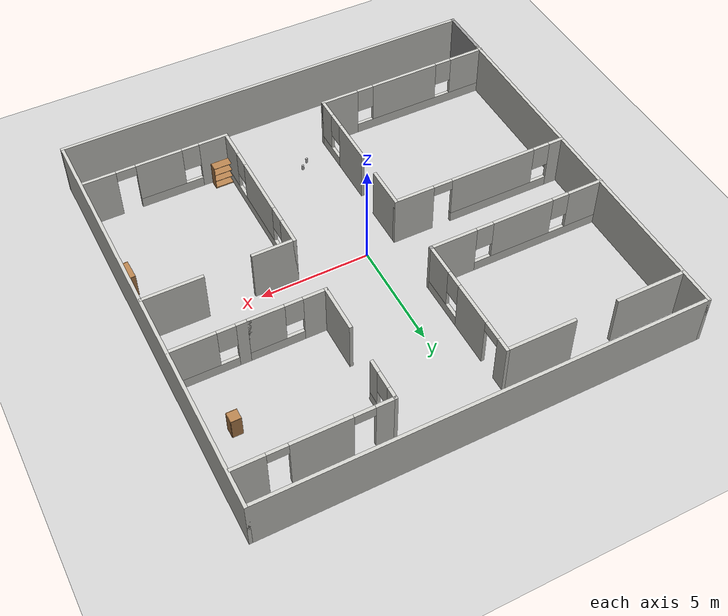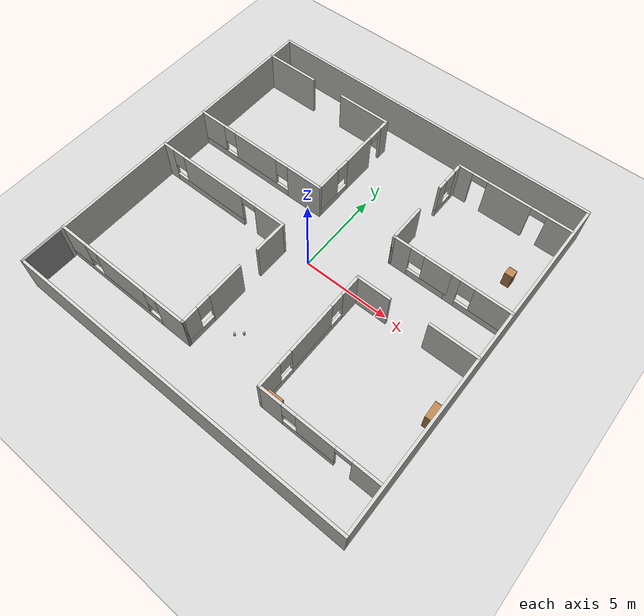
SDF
<sdf version="1.7">
 <world name="default">
  <model name="ground_plane">
   <static>1</static>
   <link name="link">
    <collision name="collision">
     <geometry><plane><normal>0 0 1</normal><size>100 100</size></plane></geometry>
     <surface>
      <contact><collide_bitmask>65535</collide_bitmask></contact>
      <friction><ode><mu>100</mu><mu2>50</mu2></ode></friction>
     </surface>
    </collision>
    <visual name="visual">
     <cast_shadows>0</cast_shadows>
     <geometry><plane><normal>0 0 1</normal><size>100 100</size></plane></geometry>
     <material>
      <script><uri>file://media/materials/scripts/gazebo.material</uri><name>Gazebo/Grey</name></script>
     </material>
    </visual>
   </link>
  </model>
  <model name="supermap">
   <pose>0.084091 0.18801 0 0 -0 0</pose>
   <link name="Wall_13">
    <collision name="Wall_13_Collision">
     <geometry><box><size>3.1968 0.15 2.5</size></box></geometry>
     <pose>0 0 1.25 0 -0 0</pose>
    </collision>
    <visual name="Wall_13_Visual">
     <pose>0 0 1.25 0 -0 0</pose>
     <geometry><box><size>3.1968 0.15 2.5</size></box></geometry>
     <material>
      <script><uri>file://media/materials/scripts/gazebo.material</uri><name>Gazebo/CeilingTiled</name></script>
      <ambient>1 1 1 1</ambient>
     </material>
     <meta><layer>0</layer></meta>
    </visual>
    <pose>-3.13164 8.41571 0 0 -0 0</pose>
   </link>
   <link name="Wall_16">
    <pose>-1.58164 5.49071 0 0 -0 -1.5708</pose>
    <visual name="Wall_16_Visual_0">
     <pose>-2.66773 0 1.25 0 -0 0</pose>
     <geometry><box><size>0.664542 0.15 2.5</size></box></geometry>
     <material>
      <script><uri>file://media/materials/scripts/gazebo.material</uri><name>Gazebo/CeilingTiled</name></script>
      <ambient>1 1 1 1</ambient>
     </material>
     <meta><layer>0</layer></meta>
    </visual>
    <collision name="Wall_16_Collision_0">
     <geometry><box><size>0.664542 0.15 2.5</size></box></geometry>
     <pose>-2.66773 0 1.25 0 -0 0</pose>
    </collision>
    <visual name="Wall_16_Visual_1">
     <pose>-0.400539 0 1.25 0 -0 0</pose>
     <geometry><box><size>2.06984 0.15 2.5</size></box></geometry>
     <material>
      <script><uri>file://media/materials/scripts/gazebo.material</uri><name>Gazebo/CeilingTiled</name></script>
      <ambient>1 1 1 1</ambient>
     </material>
     <meta><layer>0</layer></meta>
    </visual>
    <collision name="Wall_16_Collision_1">
     <geometry><box><size>2.06984 0.15 2.5</size></box></geometry>
     <pose>-0.400539 0 1.25 0 -0 0</pose>
    </collision>
    <visual name="Wall_16_Visual_2">
     <pose>1.81719 0 0.25 0 -0 0</pose>
     <geometry><box><size>2.36562 0.15 0.5</size></box></geometry>
     <material>
      <script><uri>file://media/materials/scripts/gazebo.material</uri><name>Gazebo/CeilingTiled</name></script>
      <ambient>1 1 1 1</ambient>
     </material>
     <meta><layer>0</layer></meta>
    </visual>
    <collision name="Wall_16_Collision_2">
     <geometry><box><size>2.36562 0.15 0.5</size></box></geometry>
     <pose>1.81719 0 0.25 0 -0 0</pose>
    </collision>
    <visual name="Wall_16_Visual_3">
     <pose>2.21719 0 1.5 0 -0 0</pose>
     <geometry><box><size>1.56562 0.15 2</size></box></geometry>
     <material>
      <script><uri>file://media/materials/scripts/gazebo.material</uri><name>Gazebo/CeilingTiled</name></script>
      <ambient>1 1 1 1</ambient>
     </material>
     <meta><layer>0</layer></meta>
    </visual>
    <collision name="Wall_16_Collision_3">
     <geometry><box><size>1.56562 0.15 2</size></box></geometry>
     <pose>2.21719 0 1.5 0 -0 0</pose>
    </collision>
    <visual name="Wall_16_Visual_4">
     <pose>1.03438 0 1.9 0 -0 0</pose>
     <geometry><box><size>0.8 0.15 1.2</size></box></geometry>
     <material>
      <script><uri>file://media/materials/scripts/gazebo.material</uri><name>Gazebo/CeilingTiled</name></script>
      <ambient>1 1 1 1</ambient>
     </material>
     <meta><layer>0</layer></meta>
    </visual>
    <collision name="Wall_16_Collision_4">
     <geometry><box><size>0.8 0.15 1.2</size></box></geometry>
     <pose>1.03438 0 1.9 0 -0 0</pose>
    </collision>
    <visual name="Wall_16_Visual_5">
     <pose>-1.88546 0 2.25 0 -0 0</pose>
     <geometry><box><size>0.9 0.15 0.5</size></box></geometry>
     <material>
      <script><uri>file://media/materials/scripts/gazebo.material</uri><name>Gazebo/CeilingTiled</name></script>
      <ambient>1 1 1 1</ambient>
     </material>
     <meta><layer>0</layer></meta>
    </visual>
    <collision name="Wall_16_Collision_5">
     <geometry><box><size>0.9 0.15 0.5</size></box></geometry>
     <pose>-1.88546 0 2.25 0 -0 0</pose>
    </collision>
   </link>
   <link name="Wall_17">
    <collision name="Wall_17_Collision">
     <geometry><box><size>0.15 0.15 2.5</size></box></geometry>
     <pose>0 0 1.25 0 -0 0</pose>
    </collision>
    <visual name="Wall_17_Visual">
     <pose>0 0 1.25 0 -0 0</pose>
     <geometry><box><size>0.15 0.15 2.5</size></box></geometry>
     <material>
      <script><uri>file://media/materials/scripts/gazebo.material</uri><name>Gazebo/Grey</name></script>
      <ambient>1 1 1 1</ambient>
     </material>
     <meta><layer>0</layer></meta>
    </visual>
    <pose>-1.58164 2.56571 0 0 -0 0</pose>
   </link>
   <link name="Wall_2">
    <collision name="Wall_2_Collision">
     <geometry><box><size>17.75 0.15 2.5</size></box></geometry>
     <pose>0 0 1.25 0 -0 0</pose>
    </collision>
    <visual name="Wall_2_Visual">
     <pose>0 0 1.25 0 -0 0</pose>
     <geometry><box><size>17.75 0.15 2.5</size></box></geometry>
     <material>
      <script><uri>file://media/materials/scripts/gazebo.material</uri><name>Gazebo/CeilingTiled</name></script>
      <ambient>1 1 1 1</ambient>
     </material>
     <meta><layer>0</layer></meta>
    </visual>
    <pose>-9.91033 1.175 0 0 -0 1.5708</pose>
   </link>
   <link name="Wall_21">
    <pose>-5.75664 2.56571 0 0 -0 3.14159</pose>
    <visual name="Wall_21_Visual_0">
     <pose>-3.13363 0 1.25 0 -0 0</pose>
     <geometry><box><size>2.23275 0.15 2.5</size></box></geometry>
     <material>
      <script><uri>file://media/materials/scripts/gazebo.material</uri><name>Gazebo/CeilingTiled</name></script>
      <ambient>1 1 1 1</ambient>
     </material>
     <meta><layer>0</layer></meta>
    </visual>
    <collision name="Wall_21_Collision_0">
     <geometry><box><size>2.23275 0.15 2.5</size></box></geometry>
     <pose>-3.13363 0 1.25 0 -0 0</pose>
    </collision>
    <visual name="Wall_21_Visual_1">
     <pose>1.11637 0 0.25 0 -0 0</pose>
     <geometry><box><size>6.26725 0.15 0.5</size></box></geometry>
     <material>
      <script><uri>file://media/materials/scripts/gazebo.material</uri><name>Gazebo/CeilingTiled</name></script>
      <ambient>1 1 1 1</ambient>
     </material>
     <meta><layer>0</layer></meta>
    </visual>
    <collision name="Wall_21_Collision_1">
     <geometry><box><size>6.26725 0.15 0.5</size></box></geometry>
     <pose>1.11637 0 0.25 0 -0 0</pose>
    </collision>
    <visual name="Wall_21_Visual_2">
     <pose>0.247221 0 1.5 0 -0 0</pose>
     <geometry><box><size>2.92895 0.15 2</size></box></geometry>
     <material>
      <script><uri>file://media/materials/scripts/gazebo.material</uri><name>Gazebo/CeilingTiled</name></script>
      <ambient>1 1 1 1</ambient>
     </material>
     <meta><layer>0</layer></meta>
    </visual>
    <collision name="Wall_21_Collision_2">
     <geometry><box><size>2.92895 0.15 2</size></box></geometry>
     <pose>0.247221 0 1.5 0 -0 0</pose>
    </collision>
    <visual name="Wall_21_Visual_3">
     <pose>3.38085 0 1.5 0 -0 0</pose>
     <geometry><box><size>1.7383 0.15 2</size></box></geometry>
     <material>
      <script><uri>file://media/materials/scripts/gazebo.material</uri><name>Gazebo/CeilingTiled</name></script>
      <ambient>1 1 1 1</ambient>
     </material>
     <meta><layer>0</layer></meta>
    </visual>
    <collision name="Wall_21_Collision_3">
     <geometry><box><size>1.7383 0.15 2</size></box></geometry>
     <pose>3.38085 0 1.5 0 -0 0</pose>
    </collision>
    <visual name="Wall_21_Visual_4">
     <pose>-1.61725 0 1.9 0 -0 0</pose>
     <geometry><box><size>0.8 0.15 1.2</size></box></geometry>
     <material>
      <script><uri>file://media/materials/scripts/gazebo.material</uri><name>Gazebo/CeilingTiled</name></script>
      <ambient>1 1 1 1</ambient>
     </material>
     <meta><layer>0</layer></meta>
    </visual>
    <collision name="Wall_21_Collision_4">
     <geometry><box><size>0.8 0.15 1.2</size></box></geometry>
     <pose>-1.61725 0 1.9 0 -0 0</pose>
    </collision>
    <visual name="Wall_21_Visual_5">
     <pose>2.1117 0 1.9 0 -0 0</pose>
     <geometry><box><size>0.8 0.15 1.2</size></box></geometry>
     <material>
      <script><uri>file://media/materials/scripts/gazebo.material</uri><name>Gazebo/CeilingTiled</name></script>
      <ambient>1 1 1 1</ambient>
     </material>
     <meta><layer>0</layer></meta>
    </visual>
    <collision name="Wall_21_Collision_5">
     <geometry><box><size>0.8 0.15 1.2</size></box></geometry>
     <pose>2.1117 0 1.9 0 -0 0</pose>
    </collision>
   </link>
   <link name="Wall_23">
    <pose>-5.72483 -0.405977 0 0 -0 0</pose>
    <visual name="Wall_23_Visual_0">
     <pose>-3.87306 0 1.25 0 -0 0</pose>
     <geometry><box><size>0.753885 0.15 2.5</size></box></geometry>
     <material>
      <script><uri>file://media/materials/scripts/gazebo.material</uri><name>Gazebo/CeilingTiled</name></script>
      <ambient>1 1 1 1</ambient>
     </material>
     <meta><layer>0</layer></meta>
    </visual>
    <collision name="Wall_23_Collision_0">
     <geometry><box><size>0.753885 0.15 2.5</size></box></geometry>
     <pose>-3.87306 0 1.25 0 -0 0</pose>
    </collision>
    <visual name="Wall_23_Visual_1">
     <pose>3.29505 0 1.25 0 -0 0</pose>
     <geometry><box><size>1.90991 0.15 2.5</size></box></geometry>
     <material>
      <script><uri>file://media/materials/scripts/gazebo.material</uri><name>Gazebo/CeilingTiled</name></script>
      <ambient>1 1 1 1</ambient>
     </material>
     <meta><layer>0</layer></meta>
    </visual>
    <collision name="Wall_23_Collision_1">
     <geometry><box><size>1.90991 0.15 2.5</size></box></geometry>
     <pose>3.29505 0 1.25 0 -0 0</pose>
    </collision>
    <visual name="Wall_23_Visual_2">
     <pose>-1.02801 0 0.25 0 -0 0</pose>
     <geometry><box><size>4.93621 0.15 0.5</size></box></geometry>
     <material>
      <script><uri>file://media/materials/scripts/gazebo.material</uri><name>Gazebo/CeilingTiled</name></script>
      <ambient>1 1 1 1</ambient>
     </material>
     <meta><layer>0</layer></meta>
    </visual>
    <collision name="Wall_23_Collision_2">
     <geometry><box><size>4.93621 0.15 0.5</size></box></geometry>
     <pose>-1.02801 0 0.25 0 -0 0</pose>
    </collision>
    <visual name="Wall_23_Visual_3">
     <pose>-0.628012 0 1.5 0 -0 0</pose>
     <geometry><box><size>4.13621 0.15 2</size></box></geometry>
     <material>
      <script><uri>file://media/materials/scripts/gazebo.material</uri><name>Gazebo/CeilingTiled</name></script>
      <ambient>1 1 1 1</ambient>
     </material>
     <meta><layer>0</layer></meta>
    </visual>
    <collision name="Wall_23_Collision_3">
     <geometry><box><size>4.13621 0.15 2</size></box></geometry>
     <pose>-0.628012 0 1.5 0 -0 0</pose>
    </collision>
    <visual name="Wall_23_Visual_4">
     <pose>-3.09612 0 1.9 0 -0 0</pose>
     <geometry><box><size>0.8 0.15 1.2</size></box></geometry>
     <material>
      <script><uri>file://media/materials/scripts/gazebo.material</uri><name>Gazebo/CeilingTiled</name></script>
      <ambient>1 1 1 1</ambient>
     </material>
     <meta><layer>0</layer></meta>
    </visual>
    <collision name="Wall_23_Collision_4">
     <geometry><box><size>0.8 0.15 1.2</size></box></geometry>
     <pose>-3.09612 0 1.9 0 -0 0</pose>
    </collision>
    <visual name="Wall_23_Visual_5">
     <pose>1.89009 0 2.25 0 -0 0</pose>
     <geometry><box><size>0.9 0.15 0.5</size></box></geometry>
     <material>
      <script><uri>file://media/materials/scripts/gazebo.material</uri><name>Gazebo/CeilingTiled</name></script>
      <ambient>1 1 1 1</ambient>
     </material>
     <meta><layer>0</layer></meta>
    </visual>
    <collision name="Wall_23_Collision_5">
     <geometry><box><size>0.9 0.15 0.5</size></box></geometry>
     <pose>1.89009 0 2.25 0 -0 0</pose>
    </collision>
   </link>
   <link name="Wall_25">
    <collision name="Wall_25_Collision">
     <geometry><box><size>2 0.15 2.5</size></box></geometry>
     <pose>0 0 1.25 0 -0 0</pose>
    </collision>
    <visual name="Wall_25_Visual">
     <pose>0 0 1.25 0 -0 0</pose>
     <geometry><box><size>2 0.15 2.5</size></box></geometry>
     <material>
      <script><uri>file://media/materials/scripts/gazebo.material</uri><name>Gazebo/CeilingTiled</name></script>
      <ambient>1 1 1 1</ambient>
     </material>
     <meta><layer>0</layer></meta>
    </visual>
    <pose>-1.54983 -1.33098 0 0 -0 -1.5708</pose>
   </link>
   <link name="Wall_27">
    <pose>-1.58967 -5.50689 0 0 -0 -1.5708</pose>
    <visual name="Wall_27_Visual_0">
     <pose>-0.912701 0 1.25 0 -0 0</pose>
     <geometry><box><size>2.1746 0.15 2.5</size></box></geometry>
     <material>
      <script><uri>file://media/materials/scripts/gazebo.material</uri><name>Gazebo/CeilingTiled</name></script>
      <ambient>1 1 1 1</ambient>
     </material>
     <meta><layer>0</layer></meta>
    </visual>
    <collision name="Wall_27_Collision_0">
     <geometry><box><size>2.1746 0.15 2.5</size></box></geometry>
     <pose>-0.912701 0 1.25 0 -0 0</pose>
    </collision>
    <visual name="Wall_27_Visual_1">
     <pose>1.0873 0 0.25 0 -0 0</pose>
     <geometry><box><size>1.8254 0.15 0.5</size></box></geometry>
     <material>
      <script><uri>file://media/materials/scripts/gazebo.material</uri><name>Gazebo/CeilingTiled</name></script>
      <ambient>1 1 1 1</ambient>
     </material>
     <meta><layer>0</layer></meta>
    </visual>
    <collision name="Wall_27_Collision_1">
     <geometry><box><size>1.8254 0.15 0.5</size></box></geometry>
     <pose>1.0873 0 0.25 0 -0 0</pose>
    </collision>
    <visual name="Wall_27_Visual_2">
     <pose>1.4873 0 1.5 0 -0 0</pose>
     <geometry><box><size>1.0254 0.15 2</size></box></geometry>
     <material>
      <script><uri>file://media/materials/scripts/gazebo.material</uri><name>Gazebo/CeilingTiled</name></script>
      <ambient>1 1 1 1</ambient>
     </material>
     <meta><layer>0</layer></meta>
    </visual>
    <collision name="Wall_27_Collision_2">
     <geometry><box><size>1.0254 0.15 2</size></box></geometry>
     <pose>1.4873 0 1.5 0 -0 0</pose>
    </collision>
    <visual name="Wall_27_Visual_3">
     <pose>0.574599 0 1.9 0 -0 0</pose>
     <geometry><box><size>0.8 0.15 1.2</size></box></geometry>
     <material>
      <script><uri>file://media/materials/scripts/gazebo.material</uri><name>Gazebo/CeilingTiled</name></script>
      <ambient>1 1 1 1</ambient>
     </material>
     <meta><layer>0</layer></meta>
    </visual>
    <collision name="Wall_27_Collision_3">
     <geometry><box><size>0.8 0.15 1.2</size></box></geometry>
     <pose>0.574599 0 1.9 0 -0 0</pose>
    </collision>
   </link>
   <link name="Wall_28">
    <collision name="Wall_28_Collision">
     <geometry><box><size>0.15 0.15 2.5</size></box></geometry>
     <pose>0 0 1.25 0 -0 0</pose>
    </collision>
    <visual name="Wall_28_Visual">
     <pose>0 0 1.25 0 -0 0</pose>
     <geometry><box><size>0.15 0.15 2.5</size></box></geometry>
     <material>
      <script><uri>file://media/materials/scripts/gazebo.material</uri><name>Gazebo/Grey</name></script>
      <ambient>1 1 1 1</ambient>
     </material>
     <meta><layer>0</layer></meta>
    </visual>
    <pose>-1.58967 -7.43189 0 0 -0 0</pose>
   </link>
   <link name="Wall_31">
    <collision name="Wall_31_Collision">
     <geometry><box><size>2.5 0.15 2.5</size></box></geometry>
     <pose>0 0 1.25 0 -0 0</pose>
    </collision>
    <visual name="Wall_31_Visual">
     <pose>0 0 1.25 0 -0 0</pose>
     <geometry><box><size>2.5 0.15 2.5</size></box></geometry>
     <material>
      <script><uri>file://media/materials/scripts/gazebo.material</uri><name>Gazebo/Grey</name></script>
      <ambient>1 1 1 1</ambient>
     </material>
     <meta><layer>0</layer></meta>
    </visual>
    <pose>-9.91033 -8.8 0 0 -0 -1.5708</pose>
   </link>
   <link name="Wall_38">
    <pose>-5.76467 -7.43189 0 0 -0 3.14159</pose>
    <visual name="Wall_38_Visual_0">
     <pose>-3.34507 0 1.25 0 -0 0</pose>
     <geometry><box><size>1.80986 0.15 2.5</size></box></geometry>
     <material>
      <script><uri>file://media/materials/scripts/gazebo.material</uri><name>Gazebo/CeilingTiled</name></script>
      <ambient>1 1 1 1</ambient>
     </material>
     <meta><layer>0</layer></meta>
    </visual>
    <collision name="Wall_38_Collision_0">
     <geometry><box><size>1.80986 0.15 2.5</size></box></geometry>
     <pose>-3.34507 0 1.25 0 -0 0</pose>
    </collision>
    <visual name="Wall_38_Visual_1">
     <pose>0.904931 0 0.25 0 -0 0</pose>
     <geometry><box><size>6.69014 0.15 0.5</size></box></geometry>
     <material>
      <script><uri>file://media/materials/scripts/gazebo.material</uri><name>Gazebo/CeilingTiled</name></script>
      <ambient>1 1 1 1</ambient>
     </material>
     <meta><layer>0</layer></meta>
    </visual>
    <collision name="Wall_38_Collision_1">
     <geometry><box><size>6.69014 0.15 0.5</size></box></geometry>
     <pose>0.904931 0 0.25 0 -0 0</pose>
    </collision>
    <visual name="Wall_38_Visual_2">
     <pose>0.030177 0 1.5 0 -0 0</pose>
     <geometry><box><size>3.34063 0.15 2</size></box></geometry>
     <material>
      <script><uri>file://media/materials/scripts/gazebo.material</uri><name>Gazebo/CeilingTiled</name></script>
      <ambient>1 1 1 1</ambient>
     </material>
     <meta><layer>0</layer></meta>
    </visual>
    <collision name="Wall_38_Collision_2">
     <geometry><box><size>3.34063 0.15 2</size></box></geometry>
     <pose>0.030177 0 1.5 0 -0 0</pose>
    </collision>
    <visual name="Wall_38_Visual_3">
     <pose>3.37525 0 1.5 0 -0 0</pose>
     <geometry><box><size>1.74951 0.15 2</size></box></geometry>
     <material>
      <script><uri>file://media/materials/scripts/gazebo.material</uri><name>Gazebo/CeilingTiled</name></script>
      <ambient>1 1 1 1</ambient>
     </material>
     <meta><layer>0</layer></meta>
    </visual>
    <collision name="Wall_38_Collision_3">
     <geometry><box><size>1.74951 0.15 2</size></box></geometry>
     <pose>3.37525 0 1.5 0 -0 0</pose>
    </collision>
    <visual name="Wall_38_Visual_4">
     <pose>-2.04014 0 1.9 0 -0 0</pose>
     <geometry><box><size>0.8 0.15 1.2</size></box></geometry>
     <material>
      <script><uri>file://media/materials/scripts/gazebo.material</uri><name>Gazebo/CeilingTiled</name></script>
      <ambient>1 1 1 1</ambient>
     </material>
     <meta><layer>0</layer></meta>
    </visual>
    <collision name="Wall_38_Collision_4">
     <geometry><box><size>0.8 0.15 1.2</size></box></geometry>
     <pose>-2.04014 0 1.9 0 -0 0</pose>
    </collision>
    <visual name="Wall_38_Visual_5">
     <pose>2.10049 0 1.9 0 -0 0</pose>
     <geometry><box><size>0.8 0.15 1.2</size></box></geometry>
     <material>
      <script><uri>file://media/materials/scripts/gazebo.material</uri><name>Gazebo/CeilingTiled</name></script>
      <ambient>1 1 1 1</ambient>
     </material>
     <meta><layer>0</layer></meta>
    </visual>
    <collision name="Wall_38_Collision_5">
     <geometry><box><size>0.8 0.15 1.2</size></box></geometry>
     <pose>2.10049 0 1.9 0 -0 0</pose>
    </collision>
   </link>
   <link name="Wall_40">
    <collision name="Wall_40_Collision">
     <geometry><box><size>20 0.15 2.5</size></box></geometry>
     <pose>0 0 1.25 0 -0 0</pose>
    </collision>
    <visual name="Wall_40_Visual">
     <pose>0 0 1.25 0 -0 0</pose>
     <geometry><box><size>20 0.15 2.5</size></box></geometry>
     <material>
      <script><uri>file://media/materials/scripts/gazebo.material</uri><name>Gazebo/CeilingTiled</name></script>
      <ambient>1 1 1 1</ambient>
     </material>
     <meta><layer>0</layer></meta>
    </visual>
    <pose>0.014666 -9.975 0 0 -0 0</pose>
   </link>
   <link name="Wall_47">
    <pose>3.22807 7.48394 0 0 -0 -1.5708</pose>
    <visual name="Wall_47_Visual_0">
     <pose>-0.700335 0 1.25 0 -0 0</pose>
     <geometry><box><size>0.59933 0.15 2.5</size></box></geometry>
     <material>
      <script><uri>file://media/materials/scripts/gazebo.material</uri><name>Gazebo/CeilingTiled</name></script>
      <ambient>1 1 1 1</ambient>
     </material>
     <meta><layer>0</layer></meta>
    </visual>
    <collision name="Wall_47_Collision_0">
     <geometry><box><size>0.59933 0.15 2.5</size></box></geometry>
     <pose>-0.700335 0 1.25 0 -0 0</pose>
    </collision>
    <visual name="Wall_47_Visual_1">
     <pose>0.299665 0 0.25 0 -0 0</pose>
     <geometry><box><size>1.40067 0.15 0.5</size></box></geometry>
     <material>
      <script><uri>file://media/materials/scripts/gazebo.material</uri><name>Gazebo/CeilingTiled</name></script>
      <ambient>1 1 1 1</ambient>
     </material>
     <meta><layer>0</layer></meta>
    </visual>
    <collision name="Wall_47_Collision_1">
     <geometry><box><size>1.40067 0.15 0.5</size></box></geometry>
     <pose>0.299665 0 0.25 0 -0 0</pose>
    </collision>
    <visual name="Wall_47_Visual_2">
     <pose>0.699665 0 1.5 0 -0 0</pose>
     <geometry><box><size>0.60067 0.15 2</size></box></geometry>
     <material>
      <script><uri>file://media/materials/scripts/gazebo.material</uri><name>Gazebo/CeilingTiled</name></script>
      <ambient>1 1 1 1</ambient>
     </material>
     <meta><layer>0</layer></meta>
    </visual>
    <collision name="Wall_47_Collision_2">
     <geometry><box><size>0.60067 0.15 2</size></box></geometry>
     <pose>0.699665 0 1.5 0 -0 0</pose>
    </collision>
    <visual name="Wall_47_Visual_3">
     <pose>-0.00067 0 1.9 0 -0 0</pose>
     <geometry><box><size>0.8 0.15 1.2</size></box></geometry>
     <material>
      <script><uri>file://media/materials/scripts/gazebo.material</uri><name>Gazebo/CeilingTiled</name></script>
      <ambient>1 1 1 1</ambient>
     </material>
     <meta><layer>0</layer></meta>
    </visual>
    <collision name="Wall_47_Collision_3">
     <geometry><box><size>0.8 0.15 1.2</size></box></geometry>
     <pose>-0.00067 0 1.9 0 -0 0</pose>
    </collision>
   </link>
   <link name="Wall_49">
    <collision name="Wall_49_Collision">
     <geometry><box><size>2.25 0.15 2.5</size></box></geometry>
     <pose>0 0 1.25 0 -0 0</pose>
    </collision>
    <visual name="Wall_49_Visual">
     <pose>0 0 1.25 0 -0 0</pose>
     <geometry><box><size>2.25 0.15 2.5</size></box></geometry>
     <material>
      <script><uri>file://media/materials/scripts/gazebo.material</uri><name>Gazebo/CeilingTiled</name></script>
      <ambient>1 1 1 1</ambient>
     </material>
     <meta><layer>0</layer></meta>
    </visual>
    <pose>3.19748 3.61897 0 0 -0 -1.5708</pose>
   </link>
   <link name="Wall_50">
    <collision name="Wall_50_Collision">
     <geometry><box><size>0.16 0.15 2.5</size></box></geometry>
     <pose>0 0 1.25 0 -0 0</pose>
    </collision>
    <visual name="Wall_50_Visual">
     <pose>0 0 1.25 0 -0 0</pose>
     <geometry><box><size>0.16 0.15 2.5</size></box></geometry>
     <material>
      <script><uri>file://media/materials/scripts/gazebo.material</uri><name>Gazebo/Grey</name></script>
      <ambient>1 1 1 1</ambient>
     </material>
     <meta><layer>0</layer></meta>
    </visual>
    <pose>3.20248 2.56897 0 0 -0 0</pose>
   </link>
   <link name="Wall_54">
    <pose>4.87248 2.56897 0 0 -0 0</pose>
    <visual name="Wall_54_Visual_0">
     <pose>-1.19885 0 1.25 0 -0 0</pose>
     <geometry><box><size>1.1023 0.15 2.5</size></box></geometry>
     <material>
      <script><uri>file://media/materials/scripts/gazebo.material</uri><name>Gazebo/CeilingTiled</name></script>
      <ambient>1 1 1 1</ambient>
     </material>
     <meta><layer>0</layer></meta>
    </visual>
    <collision name="Wall_54_Collision_0">
     <geometry><box><size>1.1023 0.15 2.5</size></box></geometry>
     <pose>-1.19885 0 1.25 0 -0 0</pose>
    </collision>
    <visual name="Wall_54_Visual_1">
     <pose>0.551148 0 0.25 0 -0 0</pose>
     <geometry><box><size>2.39771 0.15 0.5</size></box></geometry>
     <material>
      <script><uri>file://media/materials/scripts/gazebo.material</uri><name>Gazebo/CeilingTiled</name></script>
      <ambient>1 1 1 1</ambient>
     </material>
     <meta><layer>0</layer></meta>
    </visual>
    <collision name="Wall_54_Collision_1">
     <geometry><box><size>2.39771 0.15 0.5</size></box></geometry>
     <pose>0.551148 0 0.25 0 -0 0</pose>
    </collision>
    <visual name="Wall_54_Visual_2">
     <pose>0.951148 0 1.5 0 -0 0</pose>
     <geometry><box><size>1.5977 0.15 2</size></box></geometry>
     <material>
      <script><uri>file://media/materials/scripts/gazebo.material</uri><name>Gazebo/CeilingTiled</name></script>
      <ambient>1 1 1 1</ambient>
     </material>
     <meta><layer>0</layer></meta>
    </visual>
    <collision name="Wall_54_Collision_2">
     <geometry><box><size>1.5977 0.15 2</size></box></geometry>
     <pose>0.951148 0 1.5 0 -0 0</pose>
    </collision>
    <visual name="Wall_54_Visual_3">
     <pose>-0.247705 0 1.9 0 -0 0</pose>
     <geometry><box><size>0.8 0.15 1.2</size></box></geometry>
     <material>
      <script><uri>file://media/materials/scripts/gazebo.material</uri><name>Gazebo/CeilingTiled</name></script>
      <ambient>1 1 1 1</ambient>
     </material>
     <meta><layer>0</layer></meta>
    </visual>
    <collision name="Wall_54_Collision_3">
     <geometry><box><size>0.8 0.15 1.2</size></box></geometry>
     <pose>-0.247705 0 1.9 0 -0 0</pose>
    </collision>
   </link>
   <link name="Wall_56">
    <pose>8.22248 2.56897 0 0 -0 0</pose>
    <visual name="Wall_56_Visual_0">
     <pose>-1.43611 0 1.25 0 -0 0</pose>
     <geometry><box><size>0.627776 0.15 2.5</size></box></geometry>
     <material>
      <script><uri>file://media/materials/scripts/gazebo.material</uri><name>Gazebo/CeilingTiled</name></script>
      <ambient>1 1 1 1</ambient>
     </material>
     <meta><layer>0</layer></meta>
    </visual>
    <collision name="Wall_56_Collision_0">
     <geometry><box><size>0.627776 0.15 2.5</size></box></geometry>
     <pose>-1.43611 0 1.25 0 -0 0</pose>
    </collision>
    <visual name="Wall_56_Visual_1">
     <pose>0.313888 0 0.25 0 -0 0</pose>
     <geometry><box><size>2.87222 0.15 0.5</size></box></geometry>
     <material>
      <script><uri>file://media/materials/scripts/gazebo.material</uri><name>Gazebo/CeilingTiled</name></script>
      <ambient>1 1 1 1</ambient>
     </material>
     <meta><layer>0</layer></meta>
    </visual>
    <collision name="Wall_56_Collision_1">
     <geometry><box><size>2.87222 0.15 0.5</size></box></geometry>
     <pose>0.313888 0 0.25 0 -0 0</pose>
    </collision>
    <visual name="Wall_56_Visual_2">
     <pose>0.713888 0 1.5 0 -0 0</pose>
     <geometry><box><size>2.07222 0.15 2</size></box></geometry>
     <material>
      <script><uri>file://media/materials/scripts/gazebo.material</uri><name>Gazebo/CeilingTiled</name></script>
      <ambient>1 1 1 1</ambient>
     </material>
     <meta><layer>0</layer></meta>
    </visual>
    <collision name="Wall_56_Collision_2">
     <geometry><box><size>2.07222 0.15 2</size></box></geometry>
     <pose>0.713888 0 1.5 0 -0 0</pose>
    </collision>
    <visual name="Wall_56_Visual_3">
     <pose>-0.722224 0 1.9 0 -0 0</pose>
     <geometry><box><size>0.8 0.15 1.2</size></box></geometry>
     <material>
      <script><uri>file://media/materials/scripts/gazebo.material</uri><name>Gazebo/CeilingTiled</name></script>
      <ambient>1 1 1 1</ambient>
     </material>
     <meta><layer>0</layer></meta>
    </visual>
    <collision name="Wall_56_Collision_3">
     <geometry><box><size>0.8 0.15 1.2</size></box></geometry>
     <pose>-0.722224 0 1.9 0 -0 0</pose>
    </collision>
   </link>
   <link name="Wall_60">
    <pose>6.52807 8.40893 0 0 -0 0</pose>
    <visual name="Wall_60_Visual_0">
     <pose>-2.91788 0 1.25 0 -0 0</pose>
     <geometry><box><size>0.914233 0.15 2.5</size></box></geometry>
     <material>
      <script><uri>file://media/materials/scripts/gazebo.material</uri><name>Gazebo/CeilingTiled</name></script>
      <ambient>1 1 1 1</ambient>
     </material>
     <meta><layer>0</layer></meta>
    </visual>
    <collision name="Wall_60_Collision_0">
     <geometry><box><size>0.914233 0.15 2.5</size></box></geometry>
     <pose>-2.91788 0 1.25 0 -0 0</pose>
    </collision>
    <visual name="Wall_60_Visual_1">
     <pose>-0.260886 0 1.25 0 -0 0</pose>
     <geometry><box><size>2.59976 0.15 2.5</size></box></geometry>
     <material>
      <script><uri>file://media/materials/scripts/gazebo.material</uri><name>Gazebo/CeilingTiled</name></script>
      <ambient>1 1 1 1</ambient>
     </material>
     <meta><layer>0</layer></meta>
    </visual>
    <collision name="Wall_60_Collision_1">
     <geometry><box><size>2.59976 0.15 2.5</size></box></geometry>
     <pose>-0.260886 0 1.25 0 -0 0</pose>
    </collision>
    <visual name="Wall_60_Visual_2">
     <pose>2.657 0 1.25 0 -0 0</pose>
     <geometry><box><size>1.43601 0.15 2.5</size></box></geometry>
     <material>
      <script><uri>file://media/materials/scripts/gazebo.material</uri><name>Gazebo/CeilingTiled</name></script>
      <ambient>1 1 1 1</ambient>
     </material>
     <meta><layer>0</layer></meta>
    </visual>
    <collision name="Wall_60_Collision_2">
     <geometry><box><size>1.43601 0.15 2.5</size></box></geometry>
     <pose>2.657 0 1.25 0 -0 0</pose>
    </collision>
    <visual name="Wall_60_Visual_3">
     <pose>-2.01077 0 2.25 0 -0 0</pose>
     <geometry><box><size>0.9 0.15 0.5</size></box></geometry>
     <material>
      <script><uri>file://media/materials/scripts/gazebo.material</uri><name>Gazebo/CeilingTiled</name></script>
      <ambient>1 1 1 1</ambient>
     </material>
     <meta><layer>0</layer></meta>
    </visual>
    <collision name="Wall_60_Collision_3">
     <geometry><box><size>0.9 0.15 0.5</size></box></geometry>
     <pose>-2.01077 0 2.25 0 -0 0</pose>
    </collision>
    <visual name="Wall_60_Visual_4">
     <pose>1.48899 0 2.25 0 -0 0</pose>
     <geometry><box><size>0.9 0.15 0.5</size></box></geometry>
     <material>
      <script><uri>file://media/materials/scripts/gazebo.material</uri><name>Gazebo/CeilingTiled</name></script>
      <ambient>1 1 1 1</ambient>
     </material>
     <meta><layer>0</layer></meta>
    </visual>
    <collision name="Wall_60_Collision_4">
     <geometry><box><size>0.9 0.15 0.5</size></box></geometry>
     <pose>1.48899 0 2.25 0 -0 0</pose>
    </collision>
   </link>
   <link name="Wall_67">
    <pose>3.19101 -3.95842 0 0 -0 -1.5708</pose>
    <visual name="Wall_67_Visual_0">
     <pose>-2.97082 0 1.25 0 -0 0</pose>
     <geometry><box><size>1.30836 0.15 2.5</size></box></geometry>
     <material>
      <script><uri>file://media/materials/scripts/gazebo.material</uri><name>Gazebo/CeilingTiled</name></script>
      <ambient>1 1 1 1</ambient>
     </material>
     <meta><layer>0</layer></meta>
    </visual>
    <collision name="Wall_67_Collision_0">
     <geometry><box><size>1.30836 0.15 2.5</size></box></geometry>
     <pose>-2.97082 0 1.25 0 -0 0</pose>
    </collision>
    <visual name="Wall_67_Visual_1">
     <pose>0.654182 0 0.25 0 -0 0</pose>
     <geometry><box><size>5.94164 0.15 0.5</size></box></geometry>
     <material>
      <script><uri>file://media/materials/scripts/gazebo.material</uri><name>Gazebo/CeilingTiled</name></script>
      <ambient>1 1 1 1</ambient>
     </material>
     <meta><layer>0</layer></meta>
    </visual>
    <collision name="Wall_67_Collision_1">
     <geometry><box><size>5.94164 0.15 0.5</size></box></geometry>
     <pose>0.654182 0 0.25 0 -0 0</pose>
    </collision>
    <visual name="Wall_67_Visual_2">
     <pose>-0.052162 0 1.5 0 -0 0</pose>
     <geometry><box><size>2.92895 0.15 2</size></box></geometry>
     <material>
      <script><uri>file://media/materials/scripts/gazebo.material</uri><name>Gazebo/CeilingTiled</name></script>
      <ambient>1 1 1 1</ambient>
     </material>
     <meta><layer>0</layer></meta>
    </visual>
    <collision name="Wall_67_Collision_2">
     <geometry><box><size>2.92895 0.15 2</size></box></geometry>
     <pose>-0.052162 0 1.5 0 -0 0</pose>
    </collision>
    <visual name="Wall_67_Visual_3">
     <pose>2.91866 0 1.5 0 -0 0</pose>
     <geometry><box><size>1.41269 0.15 2</size></box></geometry>
     <material>
      <script><uri>file://media/materials/scripts/gazebo.material</uri><name>Gazebo/CeilingTiled</name></script>
      <ambient>1 1 1 1</ambient>
     </material>
     <meta><layer>0</layer></meta>
    </visual>
    <collision name="Wall_67_Collision_3">
     <geometry><box><size>1.41269 0.15 2</size></box></geometry>
     <pose>2.91866 0 1.5 0 -0 0</pose>
    </collision>
    <visual name="Wall_67_Visual_4">
     <pose>-1.91664 0 1.9 0 -0 0</pose>
     <geometry><box><size>0.8 0.15 1.2</size></box></geometry>
     <material>
      <script><uri>file://media/materials/scripts/gazebo.material</uri><name>Gazebo/CeilingTiled</name></script>
      <ambient>1 1 1 1</ambient>
     </material>
     <meta><layer>0</layer></meta>
    </visual>
    <collision name="Wall_67_Collision_4">
     <geometry><box><size>0.8 0.15 1.2</size></box></geometry>
     <pose>-1.91664 0 1.9 0 -0 0</pose>
    </collision>
    <visual name="Wall_67_Visual_5">
     <pose>1.81231 0 1.9 0 -0 0</pose>
     <geometry><box><size>0.8 0.15 1.2</size></box></geometry>
     <material>
      <script><uri>file://media/materials/scripts/gazebo.material</uri><name>Gazebo/CeilingTiled</name></script>
      <ambient>1 1 1 1</ambient>
     </material>
     <meta><layer>0</layer></meta>
    </visual>
    <collision name="Wall_67_Collision_5">
     <geometry><box><size>0.8 0.15 1.2</size></box></geometry>
     <pose>1.81231 0 1.9 0 -0 0</pose>
    </collision>
   </link>
   <link name="Wall_70">
    <collision name="Wall_70_Collision">
     <geometry><box><size>2 0.15 2.5</size></box></geometry>
     <pose>0 0 1.25 0 -0 0</pose>
    </collision>
    <visual name="Wall_70_Visual">
     <pose>0 0 1.25 0 -0 0</pose>
     <geometry><box><size>2 0.15 2.5</size></box></geometry>
     <material>
      <script><uri>file://media/materials/scripts/gazebo.material</uri><name>Gazebo/CeilingTiled</name></script>
      <ambient>1 1 1 1</ambient>
     </material>
     <meta><layer>0</layer></meta>
    </visual>
    <pose>4.11601 -0.40842 0 0 -0 0</pose>
   </link>
   <link name="Wall_74">
    <collision name="Wall_74_Collision">
     <geometry><box><size>2.75 0.15 2.5</size></box></geometry>
     <pose>0 0 1.25 0 -0 0</pose>
    </collision>
    <visual name="Wall_74_Visual">
     <pose>0 0 1.25 0 -0 0</pose>
     <geometry><box><size>2.75 0.15 2.5</size></box></geometry>
     <material>
      <script><uri>file://media/materials/scripts/gazebo.material</uri><name>Gazebo/CeilingTiled</name></script>
      <ambient>1 1 1 1</ambient>
     </material>
     <meta><layer>0</layer></meta>
    </visual>
    <pose>8.59327 -0.308567 0 0 -0 0</pose>
   </link>
   <link name="Wall_76">
    <pose>6.49101 -7.50842 0 0 -0 0</pose>
    <visual name="Wall_76_Visual_0">
     <pose>-2.67648 0 1.25 0 -0 0</pose>
     <geometry><box><size>1.39704 0.15 2.5</size></box></geometry>
     <material>
      <script><uri>file://media/materials/scripts/gazebo.material</uri><name>Gazebo/CeilingTiled</name></script>
      <ambient>1 1 1 1</ambient>
     </material>
     <meta><layer>0</layer></meta>
    </visual>
    <collision name="Wall_76_Collision_0">
     <geometry><box><size>1.39704 0.15 2.5</size></box></geometry>
     <pose>-2.67648 0 1.25 0 -0 0</pose>
    </collision>
    <visual name="Wall_76_Visual_1">
     <pose>2.62263 0 1.25 0 -0 0</pose>
     <geometry><box><size>1.50474 0.15 2.5</size></box></geometry>
     <material>
      <script><uri>file://media/materials/scripts/gazebo.material</uri><name>Gazebo/CeilingTiled</name></script>
      <ambient>1 1 1 1</ambient>
     </material>
     <meta><layer>0</layer></meta>
    </visual>
    <collision name="Wall_76_Collision_1">
     <geometry><box><size>1.50474 0.15 2.5</size></box></geometry>
     <pose>2.62263 0 1.25 0 -0 0</pose>
    </collision>
    <visual name="Wall_76_Visual_2">
     <pose>-0.50385 0 0.25 0 -0 0</pose>
     <geometry><box><size>2.94823 0.15 0.5</size></box></geometry>
     <material>
      <script><uri>file://media/materials/scripts/gazebo.material</uri><name>Gazebo/CeilingTiled</name></script>
      <ambient>1 1 1 1</ambient>
     </material>
     <meta><layer>0</layer></meta>
    </visual>
    <collision name="Wall_76_Collision_2">
     <geometry><box><size>2.94823 0.15 0.5</size></box></geometry>
     <pose>-0.50385 0 0.25 0 -0 0</pose>
    </collision>
    <visual name="Wall_76_Visual_3">
     <pose>-0.10385 0 1.5 0 -0 0</pose>
     <geometry><box><size>2.14823 0.15 2</size></box></geometry>
     <material>
      <script><uri>file://media/materials/scripts/gazebo.material</uri><name>Gazebo/CeilingTiled</name></script>
      <ambient>1 1 1 1</ambient>
     </material>
     <meta><layer>0</layer></meta>
    </visual>
    <collision name="Wall_76_Collision_3">
     <geometry><box><size>2.14823 0.15 2</size></box></geometry>
     <pose>-0.10385 0 1.5 0 -0 0</pose>
    </collision>
    <visual name="Wall_76_Visual_4">
     <pose>-1.57796 0 1.9 0 -0 0</pose>
     <geometry><box><size>0.8 0.15 1.2</size></box></geometry>
     <material>
      <script><uri>file://media/materials/scripts/gazebo.material</uri><name>Gazebo/CeilingTiled</name></script>
      <ambient>1 1 1 1</ambient>
     </material>
     <meta><layer>0</layer></meta>
    </visual>
    <collision name="Wall_76_Collision_4">
     <geometry><box><size>0.8 0.15 1.2</size></box></geometry>
     <pose>-1.57796 0 1.9 0 -0 0</pose>
    </collision>
    <visual name="Wall_76_Visual_5">
     <pose>1.42026 0 2.25 0 -0 0</pose>
     <geometry><box><size>0.9 0.15 0.5</size></box></geometry>
     <material>
      <script><uri>file://media/materials/scripts/gazebo.material</uri><name>Gazebo/CeilingTiled</name></script>
      <ambient>1 1 1 1</ambient>
     </material>
     <meta><layer>0</layer></meta>
    </visual>
    <collision name="Wall_76_Collision_5">
     <geometry><box><size>0.9 0.15 0.5</size></box></geometry>
     <pose>1.42026 0 2.25 0 -0 0</pose>
    </collision>
   </link>
   <link name="Wall_78">
    <collision name="Wall_78_Collision">
     <geometry><box><size>20 0.15 2.5</size></box></geometry>
     <pose>0 0 1.25 0 -0 0</pose>
    </collision>
    <visual name="Wall_78_Visual">
     <pose>0 0 1.25 0 -0 0</pose>
     <geometry><box><size>20 0.15 2.5</size></box></geometry>
     <material>
      <script><uri>file://media/materials/scripts/gazebo.material</uri><name>Gazebo/CeilingTiled</name></script>
      <ambient>1 1 1 1</ambient>
     </material>
     <meta><layer>0</layer></meta>
    </visual>
    <pose>0.014666 9.975 0 0 -0 0</pose>
   </link>
   <link name="Wall_8">
    <collision name="Wall_8_Collision">
     <geometry><box><size>3.25 0.15 2.5</size></box></geometry>
     <pose>0 0 1.25 0 -0 0</pose>
    </collision>
    <visual name="Wall_8_Visual">
     <pose>0 0 1.25 0 -0 0</pose>
     <geometry><box><size>3.25 0.15 2.5</size></box></geometry>
     <material>
      <script><uri>file://media/materials/scripts/gazebo.material</uri><name>Gazebo/CeilingTiled</name></script>
      <ambient>1 1 1 1</ambient>
     </material>
     <meta><layer>0</layer></meta>
    </visual>
    <pose>-8.29935 8.38381 0 0 -0 0</pose>
   </link>
   <link name="Wall_80">
    <collision name="Wall_80_Collision">
     <geometry><box><size>20 0.15 2.5</size></box></geometry>
     <pose>0 0 1.25 0 -0 0</pose>
    </collision>
    <visual name="Wall_80_Visual">
     <pose>0 0 1.25 0 -0 0</pose>
     <geometry><box><size>20 0.15 2.5</size></box></geometry>
     <material>
      <script><uri>file://media/materials/scripts/gazebo.material</uri><name>Gazebo/CeilingTiled</name></script>
      <ambient>1 1 1 1</ambient>
     </material>
     <meta><layer>0</layer></meta>
    </visual>
    <pose>9.93967 0.049999 0 0 -0 -1.5708</pose>
   </link>
   <static>1</static>
  </model>
  <model name="bookshelf">
   <static>1</static>
   <link name="link">
    <inertial><mass>1</mass></inertial>
    <collision name="back">
     <pose>0 0.005 0.6 0 -0 0</pose>
     <geometry><box><size>0.9 0.01 1.2</size></box></geometry>
    </collision>
    <visual name="visual1">
     <pose>0 0.005 0.6 0 -0 0</pose>
     <geometry><box><size>0.9 0.01 1.2</size></box></geometry>
     <material>
      <script><uri>file://media/materials/scripts/gazebo.material</uri><name>Gazebo/Wood</name></script>
     </material>
    </visual>
    <collision name="left_side">
     <pose>0.45 -0.195 0.6 0 -0 0</pose>
     <geometry><box><size>0.02 0.4 1.2</size></box></geometry>
    </collision>
    <visual name="visual2">
     <pose>0.45 -0.195 0.6 0 -0 0</pose>
     <geometry><box><size>0.02 0.4 1.2</size></box></geometry>
     <material>
      <script><uri>file://media/materials/scripts/gazebo.material</uri><name>Gazebo/Wood</name></script>
     </material>
    </visual>
    <collision name="right_side">
     <pose>-0.45 -0.195 0.6 0 -0 0</pose>
     <geometry><box><size>0.02 0.4 1.2</size></box></geometry>
    </collision>
    <visual name="visual3">
     <pose>-0.45 -0.195 0.6 0 -0 0</pose>
     <geometry><box><size>0.02 0.4 1.2</size></box></geometry>
     <material>
      <script><uri>file://media/materials/scripts/gazebo.material</uri><name>Gazebo/Wood</name></script>
     </material>
    </visual>
    <collision name="bottom">
     <pose>0 -0.195 0.03 0 -0 0</pose>
     <geometry><box><size>0.88 0.4 0.06</size></box></geometry>
    </collision>
    <visual name="visual4">
     <pose>0 -0.195 0.03 0 -0 0</pose>
     <geometry><box><size>0.88 0.4 0.06</size></box></geometry>
     <material>
      <script><uri>file://media/materials/scripts/gazebo.material</uri><name>Gazebo/Wood</name></script>
     </material>
    </visual>
    <collision name="top">
     <pose>0 -0.195 1.19 0 -0 0</pose>
     <geometry><box><size>0.88 0.4 0.02</size></box></geometry>
    </collision>
    <visual name="visual5">
     <pose>0 -0.195 1.19 0 -0 0</pose>
     <geometry><box><size>0.88 0.4 0.02</size></box></geometry>
     <material>
      <script><uri>file://media/materials/scripts/gazebo.material</uri><name>Gazebo/Wood</name></script>
     </material>
    </visual>
    <collision name="low_shelf">
     <pose>0 -0.195 0.43 0 -0 0</pose>
     <geometry><box><size>0.88 0.4 0.02</size></box></geometry>
    </collision>
    <visual name="visual6">
     <pose>0 -0.195 0.43 0 -0 0</pose>
     <geometry><box><size>0.88 0.4 0.02</size></box></geometry>
     <material>
      <script><uri>file://media/materials/scripts/gazebo.material</uri><name>Gazebo/Wood</name></script>
     </material>
    </visual>
    <collision name="high_shelf">
     <pose>0 -0.195 0.8 0 -0 0</pose>
     <geometry><box><size>0.88 0.4 0.02</size></box></geometry>
    </collision>
    <visual name="visual7">
     <pose>0 -0.195 0.8 0 -0 0</pose>
     <geometry><box><size>0.88 0.4 0.02</size></box></geometry>
     <material>
      <script><uri>file://media/materials/scripts/gazebo.material</uri><name>Gazebo/Wood</name></script>
     </material>
    </visual>
   </link>
   <pose>3.73306 -7.1906 0 0 0 -3.14005</pose>
  </model>
  <model name="beer">
   <link name="link">
    <pose>0 0 0.115 0 -0 0</pose>
    <inertial>
     <mass>0.39</mass>
     <inertia><ixx>0.00058</ixx><ixy>0</ixy><ixz>0</ixz><iyy>0.00058</iyy><iyz>0</iyz><izz>0.00019</izz></inertia>
    </inertial>
    <collision name="collision">
     <geometry><cylinder><radius>0.055</radius><length>0.23</length></cylinder></geometry>
    </collision>
    <visual name="visual">
     <geometry><cylinder><radius>0.055</radius><length>0.23</length></cylinder></geometry>
     <material>
      <script>
       <uri>model://beer/materials/scripts</uri>
       <uri>model://beer/materials/textures</uri>
       <name>Beer/Diffuse</name>
      </script>
     </material>
    </visual>
   </link>
   <pose>0.141922 -5.70802 0.77499 1e-06 -2.7e-05 0.003055</pose>
  </model>
  <model name="beer_clone">
   <link name="link">
    <pose>0 0 0.115 0 -0 0</pose>
    <inertial>
     <mass>0.39</mass>
     <inertia><ixx>0.00058</ixx><ixy>0</ixy><ixz>0</ixz><iyy>0.00058</iyy><iyz>0</iyz><izz>0.00019</izz></inertia>
    </inertial>
    <collision name="collision">
     <geometry><cylinder><radius>0.055</radius><length>0.23</length></cylinder></geometry>
    </collision>
    <visual name="visual">
     <geometry><cylinder><radius>0.055</radius><length>0.23</length></cylinder></geometry>
     <material>
      <script>
       <uri>model://beer/materials/scripts</uri>
       <uri>model://beer/materials/textures</uri>
       <name>Beer/Diffuse</name>
      </script>
     </material>
    </visual>
   </link>
   <pose>0.476429 -5.38693 0.774992 -1e-06 2.7e-05 0.007628</pose>
  </model>
  <model name="cabinet_clone_1_clone">
   <static>1</static>
   <link name="cabinet_bottom_plate">
    <inertial>
     <pose>0 0 -1 0 -0 0</pose>
     <inertia><ixx>2.05</ixx><ixy>0</ixy><ixz>0</ixz><iyy>2.05</iyy><iyz>0</iyz><izz>2.05</izz></inertia>
     <mass>25</mass>
    </inertial>
    <collision name="cabinet_bottom_plate_geom">
     <pose>0 0 0.01 0 -0 0</pose>
     <geometry><box><size>0.45 0.45 0.02</size></box></geometry>
    </collision>
    <visual name="cabinet_bottom_plate_geom_visual">
     <pose>0 0 0.01 0 -0 0</pose>
     <geometry><box><size>0.45 0.45 0.02</size></box></geometry>
     <material>
      <script><uri>file://media/materials/scripts/gazebo.material</uri><name>Gazebo/Wood</name></script>
     </material>
    </visual>
    <collision name="cabinet_bottom_plate_geom_cabinet_back_plate">
     <pose>0.235 0 0.51 0 -0 0</pose>
     <geometry><box><size>0.02 0.45 1.02</size></box></geometry>
    </collision>
    <visual name="cabinet_bottom_plate_geom_cabinet_back_plate_visual">
     <pose>0.235 0 0.51 0 -0 0</pose>
     <geometry><box><size>0.02 0.45 1.02</size></box></geometry>
     <material>
      <script><uri>file://media/materials/scripts/gazebo.material</uri><name>Gazebo/Wood</name></script>
     </material>
    </visual>
    <collision name="cabinet_bottom_plate_geom_cabinet_left_plate">
     <pose>0 0.235 0.51 0 -0 0</pose>
     <geometry><box><size>0.45 0.02 1.02</size></box></geometry>
    </collision>
    <visual name="cabinet_bottom_plate_geom_cabinet_left_plate_visual">
     <pose>0 0.235 0.51 0 -0 0</pose>
     <geometry><box><size>0.45 0.02 1.02</size></box></geometry>
     <material>
      <script><uri>file://media/materials/scripts/gazebo.material</uri><name>Gazebo/Wood</name></script>
     </material>
    </visual>
    <collision name="cabinet_bottom_plate_geom_cabinet_middle_plate">
     <pose>0 0 0.51 0 -0 0</pose>
     <geometry><box><size>0.45 0.45 0.02</size></box></geometry>
    </collision>
    <visual name="cabinet_bottom_plate_geom_cabinet_middle_plate_visual">
     <pose>0 0 0.51 0 -0 0</pose>
     <geometry><box><size>0.45 0.45 0.02</size></box></geometry>
     <material>
      <script><uri>file://media/materials/scripts/gazebo.material</uri><name>Gazebo/Wood</name></script>
     </material>
    </visual>
    <collision name="cabinet_bottom_plate_geom_cabinet_right_plate">
     <pose>0 -0.235 0.51 0 -0 0</pose>
     <geometry><box><size>0.45 0.02 1.02</size></box></geometry>
    </collision>
    <visual name="cabinet_bottom_plate_geom_cabinet_right_plate_visual">
     <pose>0 -0.235 0.51 0 -0 0</pose>
     <geometry><box><size>0.45 0.02 1.02</size></box></geometry>
     <material>
      <script><uri>file://media/materials/scripts/gazebo.material</uri><name>Gazebo/Wood</name></script>
     </material>
    </visual>
    <collision name="cabinet_bottom_plate_geom_cabinet_top_plate">
     <pose>0 0 1.01 0 -0 0</pose>
     <geometry><box><size>0.45 0.45 0.02</size></box></geometry>
    </collision>
    <visual name="cabinet_bottom_plate_geom_cabinet_top_plate_visual">
     <pose>0 0 1.01 0 -0 0</pose>
     <geometry><box><size>0.45 0.45 0.02</size></box></geometry>
     <material>
      <script><uri>file://media/materials/scripts/gazebo.material</uri><name>Gazebo/Wood</name></script>
     </material>
    </visual>
   </link>
   <pose>8.60509 5.5987 0 0 -0 0</pose>
  </model>
  <model name="bookshelf_0">
   <static>1</static>
   <link name="link">
    <inertial><mass>1</mass></inertial>
    <collision name="back">
     <pose>0 0.005 0.6 0 -0 0</pose>
     <geometry><box><size>0.9 0.01 1.2</size></box></geometry>
    </collision>
    <visual name="visual1">
     <pose>0 0.005 0.6 0 -0 0</pose>
     <geometry><box><size>0.9 0.01 1.2</size></box></geometry>
     <material>
      <script><uri>file://media/materials/scripts/gazebo.material</uri><name>Gazebo/Wood</name></script>
     </material>
    </visual>
    <collision name="left_side">
     <pose>0.45 -0.195 0.6 0 -0 0</pose>
     <geometry><box><size>0.02 0.4 1.2</size></box></geometry>
    </collision>
    <visual name="visual2">
     <pose>0.45 -0.195 0.6 0 -0 0</pose>
     <geometry><box><size>0.02 0.4 1.2</size></box></geometry>
     <material>
      <script><uri>file://media/materials/scripts/gazebo.material</uri><name>Gazebo/Wood</name></script>
     </material>
    </visual>
    <collision name="right_side">
     <pose>-0.45 -0.195 0.6 0 -0 0</pose>
     <geometry><box><size>0.02 0.4 1.2</size></box></geometry>
    </collision>
    <visual name="visual3">
     <pose>-0.45 -0.195 0.6 0 -0 0</pose>
     <geometry><box><size>0.02 0.4 1.2</size></box></geometry>
     <material>
      <script><uri>file://media/materials/scripts/gazebo.material</uri><name>Gazebo/Wood</name></script>
     </material>
    </visual>
    <collision name="bottom">
     <pose>0 -0.195 0.03 0 -0 0</pose>
     <geometry><box><size>0.88 0.4 0.06</size></box></geometry>
    </collision>
    <visual name="visual4">
     <pose>0 -0.195 0.03 0 -0 0</pose>
     <geometry><box><size>0.88 0.4 0.06</size></box></geometry>
     <material>
      <script><uri>file://media/materials/scripts/gazebo.material</uri><name>Gazebo/Wood</name></script>
     </material>
    </visual>
    <collision name="top">
     <pose>0 -0.195 1.19 0 -0 0</pose>
     <geometry><box><size>0.88 0.4 0.02</size></box></geometry>
    </collision>
    <visual name="visual5">
     <pose>0 -0.195 1.19 0 -0 0</pose>
     <geometry><box><size>0.88 0.4 0.02</size></box></geometry>
     <material>
      <script><uri>file://media/materials/scripts/gazebo.material</uri><name>Gazebo/Wood</name></script>
     </material>
    </visual>
    <collision name="low_shelf">
     <pose>0 -0.195 0.43 0 -0 0</pose>
     <geometry><box><size>0.88 0.4 0.02</size></box></geometry>
    </collision>
    <visual name="visual6">
     <pose>0 -0.195 0.43 0 -0 0</pose>
     <geometry><box><size>0.88 0.4 0.02</size></box></geometry>
     <material>
      <script><uri>file://media/materials/scripts/gazebo.material</uri><name>Gazebo/Wood</name></script>
     </material>
    </visual>
    <collision name="high_shelf">
     <pose>0 -0.195 0.8 0 -0 0</pose>
     <geometry><box><size>0.88 0.4 0.02</size></box></geometry>
    </collision>
    <visual name="visual7">
     <pose>0 -0.195 0.8 0 -0 0</pose>
     <geometry><box><size>0.88 0.4 0.02</size></box></geometry>
     <material>
      <script><uri>file://media/materials/scripts/gazebo.material</uri><name>Gazebo/Wood</name></script>
     </material>
    </visual>
   </link>
   <pose>9.9044 -2.93801 0 0 0 -1.54157</pose>
  </model>
 </world>
</sdf>
